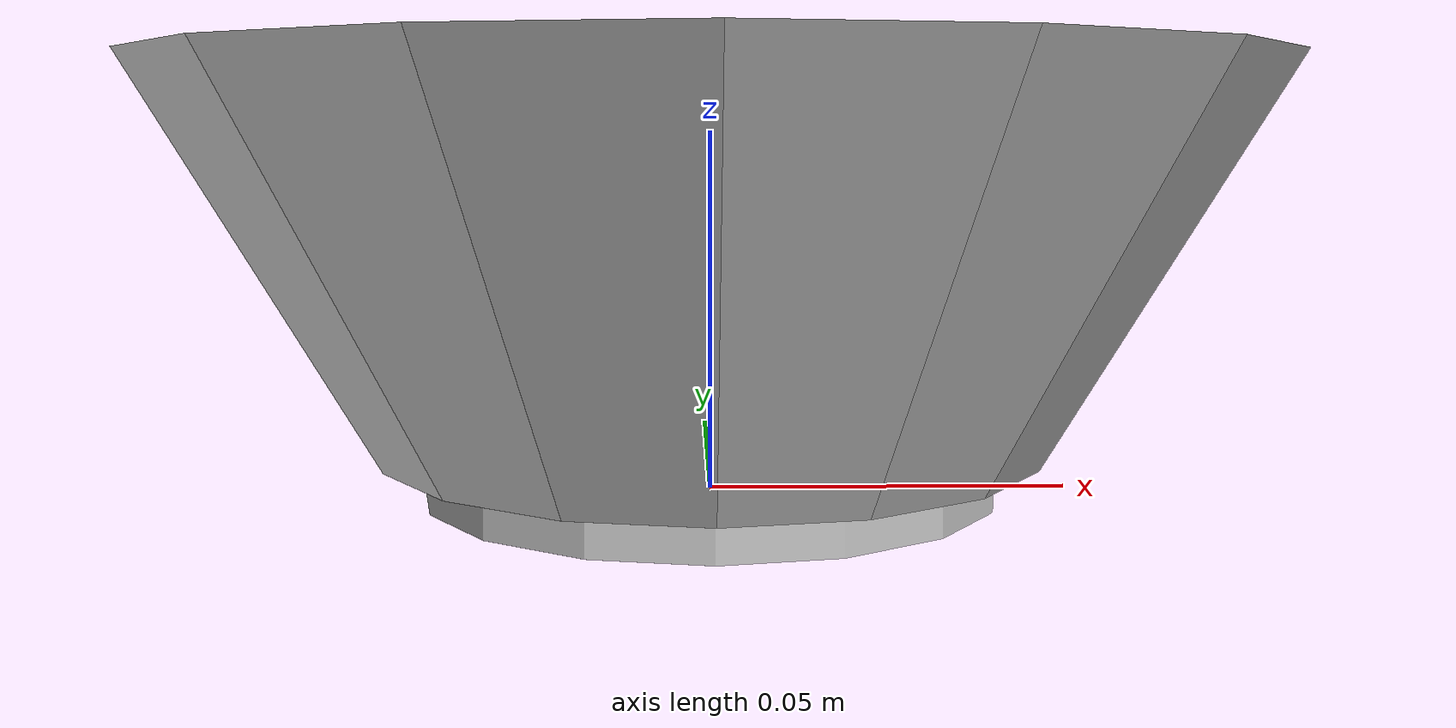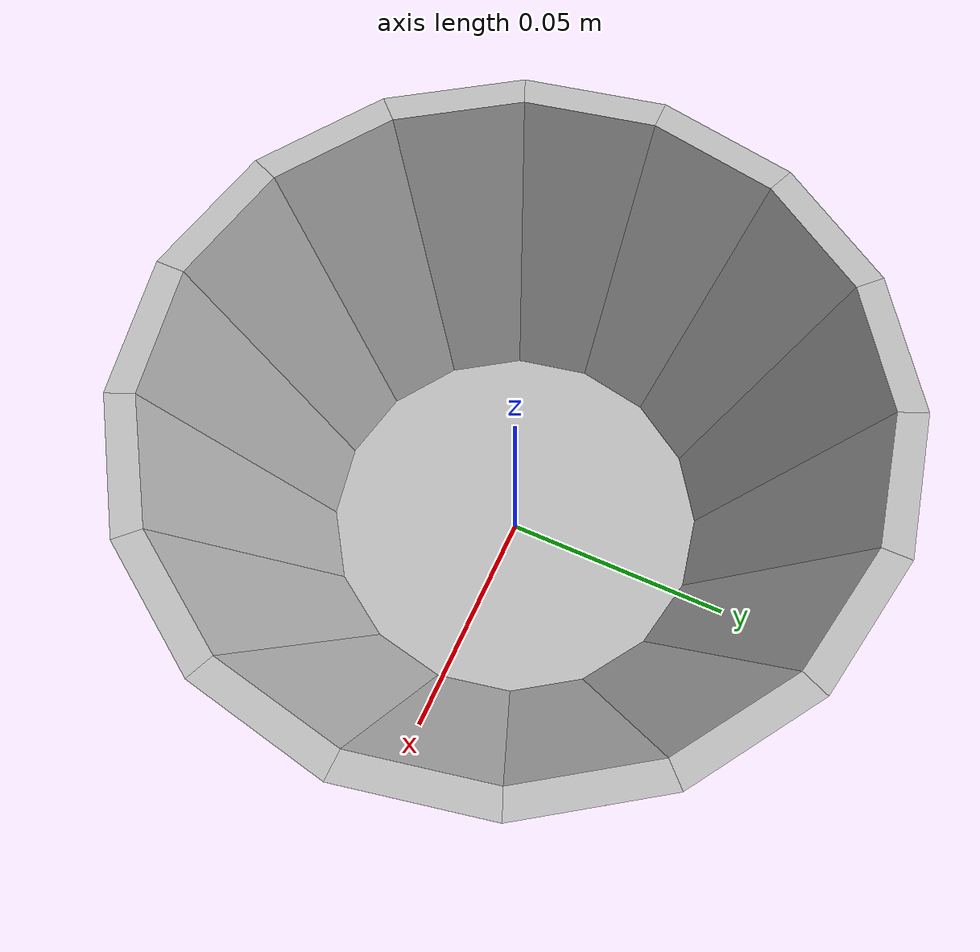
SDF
<?xml version="1.0" ?>
<sdf version="1.7">
  <model name="cooking_bowl">
    <pose>0 0 0 0 0 0</pose>
    <static>true</static>
    <link name="bottom_plate">
      <inertial>
        <mass>0.01</mass>
      </inertial>
      <collision name="collision">
        <geometry>
          <mesh>
            <uri>model://cooking_bowl/meshes/cooking_bowl_bottom.stl</uri>
          </mesh>
        </geometry>
      </collision>
      <visual name="visual">
        <geometry>
          <mesh>
            <uri>model://cooking_bowl/meshes/cooking_bowl_bottom.stl</uri>
          </mesh>
        </geometry>
      </visual>
    </link>
    <link name="side_fragment_0">
      <inertial>
        <mass>0.01</mass>
      </inertial>
      <collision name="collision">
       <pose>0 0 0 0 0 0.0</pose>
        <geometry>
          <mesh>
            <uri>model://cooking_bowl/meshes/cooking_bowl_fragment.stl</uri>
          </mesh>
        </geometry>
      </collision>
      <visual name="visual">
       <pose>0 0 0 0 0 0.0</pose>
        <geometry>
          <mesh>
            <uri>model://cooking_bowl/meshes/cooking_bowl_fragment.stl</uri>
          </mesh>
        </geometry>
      </visual>
    </link>
    <link name="side_fragment_1">
      <inertial>
        <mass>0.01</mass>
      </inertial>
      <collision name="collision">
       <pose>0 0 0 0 0 0.39269908169872414</pose>
        <geometry>
          <mesh>
            <uri>model://cooking_bowl/meshes/cooking_bowl_fragment.stl</uri>
          </mesh>
        </geometry>
      </collision>
      <visual name="visual">
       <pose>0 0 0 0 0 0.39269908169872414</pose>
        <geometry>
          <mesh>
            <uri>model://cooking_bowl/meshes/cooking_bowl_fragment.stl</uri>
          </mesh>
        </geometry>
      </visual>
    </link>
    <link name="side_fragment_2">
      <inertial>
        <mass>0.01</mass>
      </inertial>
      <collision name="collision">
       <pose>0 0 0 0 0 0.7853981633974483</pose>
        <geometry>
          <mesh>
            <uri>model://cooking_bowl/meshes/cooking_bowl_fragment.stl</uri>
          </mesh>
        </geometry>
      </collision>
      <visual name="visual">
       <pose>0 0 0 0 0 0.7853981633974483</pose>
        <geometry>
          <mesh>
            <uri>model://cooking_bowl/meshes/cooking_bowl_fragment.stl</uri>
          </mesh>
        </geometry>
      </visual>
    </link>
    <link name="side_fragment_3">
      <inertial>
        <mass>0.01</mass>
      </inertial>
      <collision name="collision">
       <pose>0 0 0 0 0 1.1780972450961724</pose>
        <geometry>
          <mesh>
            <uri>model://cooking_bowl/meshes/cooking_bowl_fragment.stl</uri>
          </mesh>
        </geometry>
      </collision>
      <visual name="visual">
       <pose>0 0 0 0 0 1.1780972450961724</pose>
        <geometry>
          <mesh>
            <uri>model://cooking_bowl/meshes/cooking_bowl_fragment.stl</uri>
          </mesh>
        </geometry>
      </visual>
    </link>
    <link name="side_fragment_4">
      <inertial>
        <mass>0.01</mass>
      </inertial>
      <collision name="collision">
       <pose>0 0 0 0 0 1.5707963267948966</pose>
        <geometry>
          <mesh>
            <uri>model://cooking_bowl/meshes/cooking_bowl_fragment.stl</uri>
          </mesh>
        </geometry>
      </collision>
      <visual name="visual">
       <pose>0 0 0 0 0 1.5707963267948966</pose>
        <geometry>
          <mesh>
            <uri>model://cooking_bowl/meshes/cooking_bowl_fragment.stl</uri>
          </mesh>
        </geometry>
      </visual>
    </link>
    <link name="side_fragment_5">
      <inertial>
        <mass>0.01</mass>
      </inertial>
      <collision name="collision">
       <pose>0 0 0 0 0 1.9634954084936207</pose>
        <geometry>
          <mesh>
            <uri>model://cooking_bowl/meshes/cooking_bowl_fragment.stl</uri>
          </mesh>
        </geometry>
      </collision>
      <visual name="visual">
       <pose>0 0 0 0 0 1.9634954084936207</pose>
        <geometry>
          <mesh>
            <uri>model://cooking_bowl/meshes/cooking_bowl_fragment.stl</uri>
          </mesh>
        </geometry>
      </visual>
    </link>
    <link name="side_fragment_6">
      <inertial>
        <mass>0.01</mass>
      </inertial>
      <collision name="collision">
       <pose>0 0 0 0 0 2.356194490192345</pose>
        <geometry>
          <mesh>
            <uri>model://cooking_bowl/meshes/cooking_bowl_fragment.stl</uri>
          </mesh>
        </geometry>
      </collision>
      <visual name="visual">
       <pose>0 0 0 0 0 2.356194490192345</pose>
        <geometry>
          <mesh>
            <uri>model://cooking_bowl/meshes/cooking_bowl_fragment.stl</uri>
          </mesh>
        </geometry>
      </visual>
    </link>
    <link name="side_fragment_7">
      <inertial>
        <mass>0.01</mass>
      </inertial>
      <collision name="collision">
       <pose>0 0 0 0 0 2.748893571891069</pose>
        <geometry>
          <mesh>
            <uri>model://cooking_bowl/meshes/cooking_bowl_fragment.stl</uri>
          </mesh>
        </geometry>
      </collision>
      <visual name="visual">
       <pose>0 0 0 0 0 2.748893571891069</pose>
        <geometry>
          <mesh>
            <uri>model://cooking_bowl/meshes/cooking_bowl_fragment.stl</uri>
          </mesh>
        </geometry>
      </visual>
    </link>
    <link name="side_fragment_8">
      <inertial>
        <mass>0.01</mass>
      </inertial>
      <collision name="collision">
       <pose>0 0 0 0 0 3.141592653589793</pose>
        <geometry>
          <mesh>
            <uri>model://cooking_bowl/meshes/cooking_bowl_fragment.stl</uri>
          </mesh>
        </geometry>
      </collision>
      <visual name="visual">
       <pose>0 0 0 0 0 3.141592653589793</pose>
        <geometry>
          <mesh>
            <uri>model://cooking_bowl/meshes/cooking_bowl_fragment.stl</uri>
          </mesh>
        </geometry>
      </visual>
    </link>
    <link name="side_fragment_9">
      <inertial>
        <mass>0.01</mass>
      </inertial>
      <collision name="collision">
       <pose>0 0 0 0 0 3.5342917352885173</pose>
        <geometry>
          <mesh>
            <uri>model://cooking_bowl/meshes/cooking_bowl_fragment.stl</uri>
          </mesh>
        </geometry>
      </collision>
      <visual name="visual">
       <pose>0 0 0 0 0 3.5342917352885173</pose>
        <geometry>
          <mesh>
            <uri>model://cooking_bowl/meshes/cooking_bowl_fragment.stl</uri>
          </mesh>
        </geometry>
      </visual>
    </link>
    <link name="side_fragment_10">
      <inertial>
        <mass>0.01</mass>
      </inertial>
      <collision name="collision">
       <pose>0 0 0 0 0 3.9269908169872414</pose>
        <geometry>
          <mesh>
            <uri>model://cooking_bowl/meshes/cooking_bowl_fragment.stl</uri>
          </mesh>
        </geometry>
      </collision>
      <visual name="visual">
       <pose>0 0 0 0 0 3.9269908169872414</pose>
        <geometry>
          <mesh>
            <uri>model://cooking_bowl/meshes/cooking_bowl_fragment.stl</uri>
          </mesh>
        </geometry>
      </visual>
    </link>
    <link name="side_fragment_11">
      <inertial>
        <mass>0.01</mass>
      </inertial>
      <collision name="collision">
       <pose>0 0 0 0 0 4.319689898685965</pose>
        <geometry>
          <mesh>
            <uri>model://cooking_bowl/meshes/cooking_bowl_fragment.stl</uri>
          </mesh>
        </geometry>
      </collision>
      <visual name="visual">
       <pose>0 0 0 0 0 4.319689898685965</pose>
        <geometry>
          <mesh>
            <uri>model://cooking_bowl/meshes/cooking_bowl_fragment.stl</uri>
          </mesh>
        </geometry>
      </visual>
    </link>
    <link name="side_fragment_12">
      <inertial>
        <mass>0.01</mass>
      </inertial>
      <collision name="collision">
       <pose>0 0 0 0 0 4.71238898038469</pose>
        <geometry>
          <mesh>
            <uri>model://cooking_bowl/meshes/cooking_bowl_fragment.stl</uri>
          </mesh>
        </geometry>
      </collision>
      <visual name="visual">
       <pose>0 0 0 0 0 4.71238898038469</pose>
        <geometry>
          <mesh>
            <uri>model://cooking_bowl/meshes/cooking_bowl_fragment.stl</uri>
          </mesh>
        </geometry>
      </visual>
    </link>
    <link name="side_fragment_13">
      <inertial>
        <mass>0.01</mass>
      </inertial>
      <collision name="collision">
       <pose>0 0 0 0 0 5.105088062083414</pose>
        <geometry>
          <mesh>
            <uri>model://cooking_bowl/meshes/cooking_bowl_fragment.stl</uri>
          </mesh>
        </geometry>
      </collision>
      <visual name="visual">
       <pose>0 0 0 0 0 5.105088062083414</pose>
        <geometry>
          <mesh>
            <uri>model://cooking_bowl/meshes/cooking_bowl_fragment.stl</uri>
          </mesh>
        </geometry>
      </visual>
    </link>
    <link name="side_fragment_14">
      <inertial>
        <mass>0.01</mass>
      </inertial>
      <collision name="collision">
       <pose>0 0 0 0 0 5.497787143782138</pose>
        <geometry>
          <mesh>
            <uri>model://cooking_bowl/meshes/cooking_bowl_fragment.stl</uri>
          </mesh>
        </geometry>
      </collision>
      <visual name="visual">
       <pose>0 0 0 0 0 5.497787143782138</pose>
        <geometry>
          <mesh>
            <uri>model://cooking_bowl/meshes/cooking_bowl_fragment.stl</uri>
          </mesh>
        </geometry>
      </visual>
    </link>
    <link name="side_fragment_15">
      <inertial>
        <mass>0.01</mass>
      </inertial>
      <collision name="collision">
       <pose>0 0 0 0 0 5.890486225480862</pose>
        <geometry>
          <mesh>
            <uri>model://cooking_bowl/meshes/cooking_bowl_fragment.stl</uri>
          </mesh>
        </geometry>
      </collision>
      <visual name="visual">
       <pose>0 0 0 0 0 5.890486225480862</pose>
        <geometry>
          <mesh>
            <uri>model://cooking_bowl/meshes/cooking_bowl_fragment.stl</uri>
          </mesh>
        </geometry>
      </visual>
    </link>
  </model>
</sdf>
